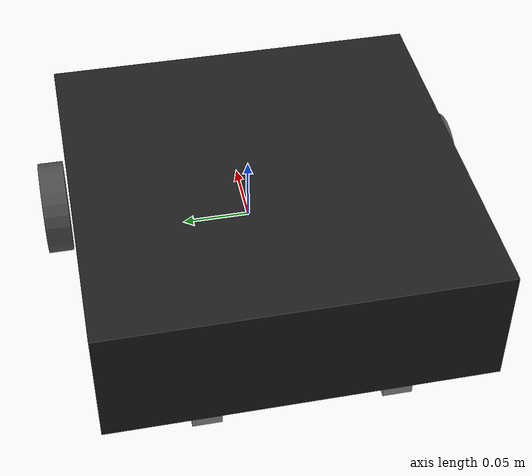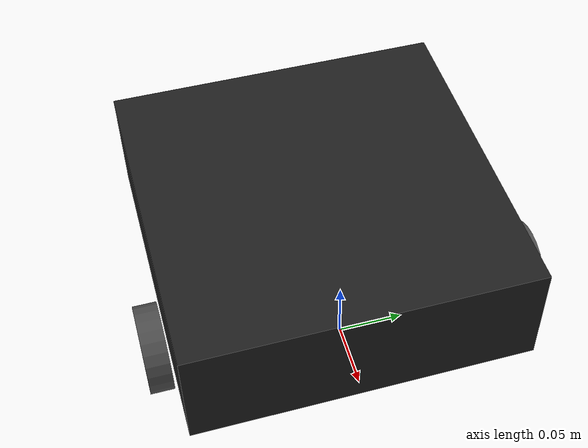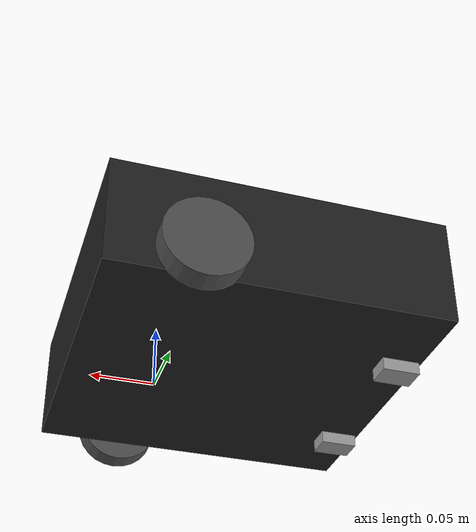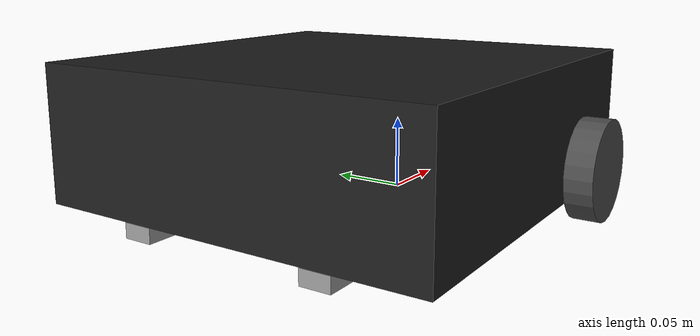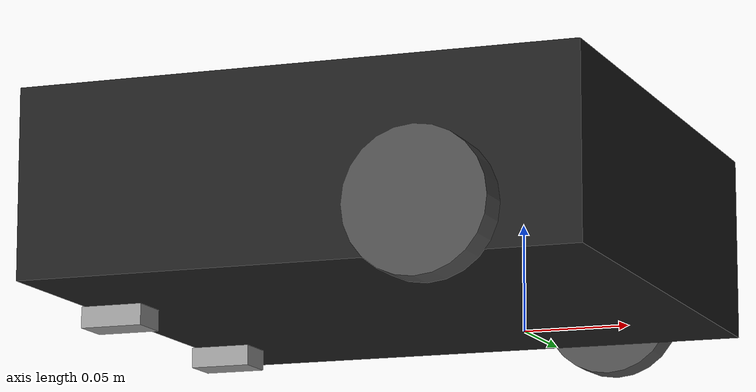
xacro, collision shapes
<?xml version="1.0" ?>
<robot name="turtlebot3_waffle" xmlns:xacro="http://ros.org/wiki/xacro">
  <xacro:include filename="$(find turtlebot3_description)/urdf/common_properties.xacro"/>
  <xacro:include filename="$(find turtlebot3_description)/urdf/turtlebot3_waffle.gazebo.xacro"/>

  <xacro:property name="r200_cam_rgb_px" value="0.005"/>
  <xacro:property name="r200_cam_rgb_py" value="0.018"/>
  <xacro:property name="r200_cam_rgb_pz" value="0.013"/>
  <xacro:property name="r200_cam_depth_offset" value="0.01"/>

  <link name="base_footprint"/>

  <joint name="base_joint" type="fixed">
    <parent link="base_footprint"/>
    <child link="base_link" />
    <origin xyz="0 0 0.010" rpy="0 0 0"/>
  </joint>

  <link name="base_link">
    <visual>
      <origin xyz="-0.064 0 0.0" rpy="0 0 0"/>
      <geometry>
        <mesh filename="package://turtlebot3_description/meshes/bases/waffle_pi_base.stl" scale="0.001 0.001 0.001"/>
      </geometry>
      <material name="light_black"/>
    </visual>
    <collision>
      <origin xyz="-0.064 0 0.048" rpy="0 0 0"/>
      <geometry>
        <box size="0.265 0.265 0.089"/>
      </geometry>
    </collision>
    <inertial>
      <origin xyz="-0.064 0 0" rpy="0 0 0"/>
      <mass value="1"/>
      <inertia ixx="0.01" ixy="0.0" ixz="0.0"
               iyy="0.01" iyz="0.0"
               izz="0.01" />
    </inertial>
  </link>

  <joint name="wheel_left_joint" type="continuous">
    <parent link="base_link"/>
    <child link="wheel_left_link"/>
    <origin xyz="0.0 0.144 0.023" rpy="${-M_PI*0.5} 0 0"/>
    <axis xyz="0 0 1"/>
  </joint>

  <link name="wheel_left_link">
    <visual>
      <origin xyz="0 0 0" rpy="${M_PI*0.5} 0 0"/>
      <geometry>
        <mesh filename="package://turtlebot3_description/meshes/wheels/left_tire.stl" scale="0.001 0.001 0.001"/>
      </geometry>
      <material name="dark"/>
    </visual>
    <collision>
      <origin rpy="0 0 0" xyz="0 0 0"/>
      <geometry>
        <cylinder length="0.018" radius="0.033"/>
      </geometry>
    </collision>
    <inertial>
      <origin xyz="0 0 0" />
      <mass value="0.01" />
      <inertia ixx="0.001" ixy="0.0" ixz="0.0"
               iyy="0.001" iyz="0.0"
               izz="0.001" />
    </inertial>
  </link>

  <joint name="wheel_right_joint" type="continuous">
    <parent link="base_link"/>
    <child link="wheel_right_link"/>
    <origin xyz="0.0 -0.144 0.023" rpy="${-M_PI*0.5} 0 0"/>
    <axis xyz="0 0 1"/>
  </joint>

  <link name="wheel_right_link">
    <visual>
      <origin xyz="0 0 0" rpy="${M_PI*0.5} 0 0"/>
      <geometry>
        <mesh filename="package://turtlebot3_description/meshes/wheels/right_tire.stl" scale="0.001 0.001 0.001"/>
      </geometry>
      <material name="dark"/>
    </visual>
    <collision>
      <origin rpy="0 0 0" xyz="0 0 0"/>
      <geometry>
        <cylinder length="0.018" radius="0.033"/>
      </geometry>
    </collision>
    <inertial>
      <origin xyz="0 0 0" />
      <mass value="0.01" />
      <inertia ixx="0.001" ixy="0.0" ixz="0.0"
               iyy="0.001" iyz="0.0"
               izz="0.001" />
    </inertial>
  </link>

  <joint name="caster_back_right_joint" type="fixed">
    <parent link="base_link"/>
    <child link="caster_back_right_link"/>
    <origin xyz="-0.177 -0.064 -0.004" rpy="${-M_PI*0.5} 0 0"/>
  </joint>

  <link name="caster_back_right_link">
    <collision>
      <origin rpy="0 0 0" xyz="0 0 0"/>
      <geometry>
        <box size="0.030 0.010 0.020"/>
      </geometry>
    </collision>

    <inertial>
      <origin xyz="0 0 0" />
      <mass value="0.01" />
      <inertia ixx="0.001" ixy="0.0" ixz="0.0"
               iyy="0.001" iyz="0.0"
               izz="0.001" />
    </inertial>
  </link>

  <joint name="caster_back_left_joint" type="fixed">
    <parent link="base_link"/>
    <child link="caster_back_left_link"/>
    <origin xyz="-0.177 0.064 -0.004" rpy="${-M_PI*0.5} 0 0"/>
  </joint>

  <link name="caster_back_left_link">
    <collision>
      <origin rpy="0 0 0" xyz="0 0 0"/>
      <geometry>
        <box size="0.030 0.010 0.020"/>
      </geometry>
    </collision>

    <inertial>
      <origin xyz="0 0 0" />
      <mass value="0.01" />
      <inertia ixx="0.001" ixy="0.0" ixz="0.0"
               iyy="0.001" iyz="0.0"
               izz="0.001" />
    </inertial>
  </link>

	<material name="Kinect2Grey">
		<color rgba="0.15 0.15 0.15 1.0"/>
	</material>

	<!-- Joint connecting the parent to our frame_in -->
	<joint name="kinect2_in_joint" type="fixed">
		<origin xyz="0.065 0 0.115" rpy="-${M_PI*0.5} 0 -${M_PI*0.5}"/>
		<parent link="base_link"/>
		<child link="kinect2_base_link"/>
	</joint>

	<link name="kinect2_base_link"/>

	<joint name="kinect2_rgb_optical_joint" type="fixed">
		<origin xyz="0.095 0 0" rpy="0 0 0"/>
		<parent link="kinect2_base_link"/>
		<child link="kinect2_rgb_optical_frame"/>
	</joint>

	<link name="kinect2_rgb_optical_frame">
		<visual>
			<origin xyz="0 0 0" rpy="0 0 0"/>
			<geometry>
				<!-- these meshes were exported in mm, so scale back to m -->
				<mesh filename="package://iai_kinect2_description/meshes/kinect2_origin_on_rgb_optical_frame.stl" scale="0.001 0.001 0.001"/>
			</geometry>
			<material name="Kinect2Grey"/>
		</visual>

		<collision>
			<origin xyz="0.003 0.065 0.010" rpy="0 0 0"/>
			<geometry>
				<mesh
					filename="package://iai_kinect2_description/meshes/kinect2_origin_on_rgb_optical_frame.stl" scale="0.001 0.001 0.001"/>
			</geometry>
		</collision>
	</link>
</robot>
